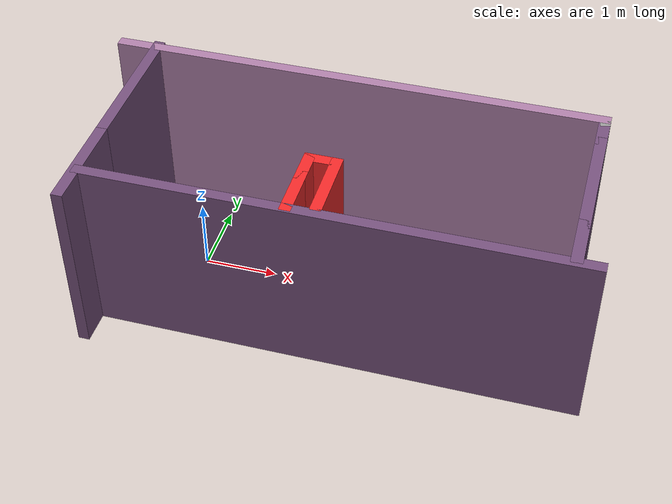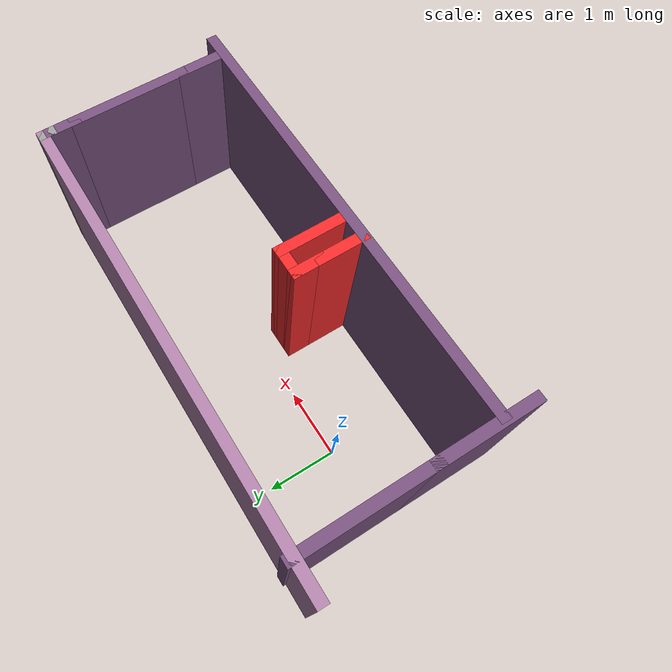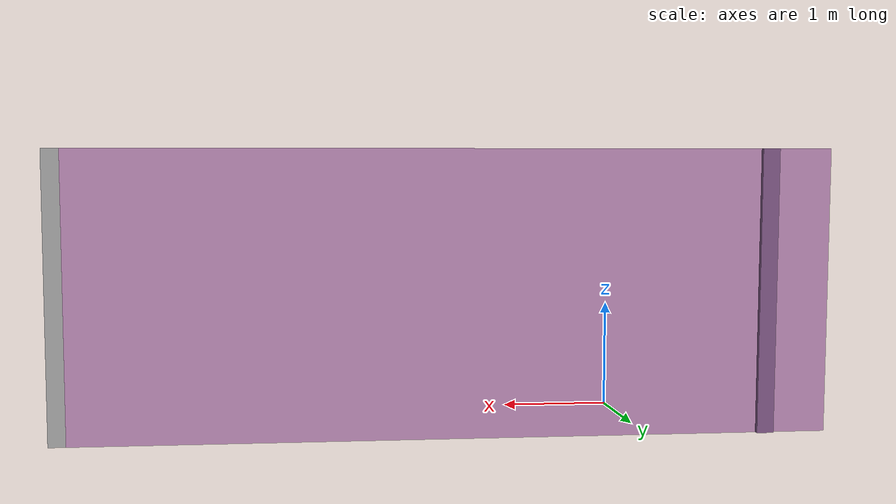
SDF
<?xml version='1.0'?>
<sdf version='1.7'>
  <model name='show'>
    <pose>1.89197 -0.154432 0 0 -0 0</pose>
    <link name='Wall_100'>
      <collision name='Wall_100_Collision'>
        <geometry>
          <box>
            <size>1 0.15 2.5</size>
          </box>
        </geometry>
        <pose>0 0 1.25 0 -0 0</pose>
      </collision>
      <visual name='Wall_100_Visual'>
        <pose>0 0 1.25 0 -0 0</pose>
        <geometry>
          <box>
            <size>1 0.15 2.5</size>
          </box>
        </geometry>
        <material>
          <script>
            <uri>file://media/materials/scripts/gazebo.material</uri>
            <name>Gazebo/Grey</name>
          </script>
          <ambient>0.937255 0.160784 0.160784 1</ambient>
        </material>
        <meta>
          <layer>0</layer>
        </meta>
      </visual>
      <pose>0.086389 -0.602431 0 0 -0 -1.5708</pose>
    </link>
    <link name='Wall_57'>
      <collision name='Wall_57_Collision'>
        <geometry>
          <box>
            <size>6.5 0.15 2.5</size>
          </box>
        </geometry>
        <pose>0 0 1.25 0 -0 0</pose>
      </collision>
      <visual name='Wall_57_Visual'>
        <pose>0 0 1.25 0 -0 0</pose>
        <geometry>
          <box>
            <size>6.5 0.15 2.5</size>
          </box>
        </geometry>
        <material>
          <script>
            <uri>file://media/materials/scripts/gazebo.material</uri>
            <name>Gazebo/Grey</name>
          </script>
          <ambient>0.458824 0.313726 0.482353 1</ambient>
        </material>
        <meta>
          <layer>0</layer>
        </meta>
      </visual>
      <pose>0.260458 -1.15345 0 0 -0 0</pose>
    </link>
    <link name='Wall_69'>
      <collision name='Wall_69_Collision'>
        <geometry>
          <box>
            <size>0.75 0.15 2.5</size>
          </box>
        </geometry>
        <pose>0 0 1.25 0 -0 0</pose>
      </collision>
      <visual name='Wall_69_Visual'>
        <pose>0 0 1.25 0 -0 0</pose>
        <geometry>
          <box>
            <size>0.75 0.15 2.5</size>
          </box>
        </geometry>
        <material>
          <script>
            <uri>file://media/materials/scripts/gazebo.material</uri>
            <name>Gazebo/Grey</name>
          </script>
          <ambient>0.458824 0.313726 0.482353 1</ambient>
        </material>
        <meta>
          <layer>0</layer>
        </meta>
      </visual>
      <pose>3.16454 -0.791716 0 0 -0 -1.5708</pose>
    </link>
    <link name='Wall_71'>
      <collision name='Wall_71_Collision'>
        <geometry>
          <box>
            <size>1.75 0.15 2.5</size>
          </box>
        </geometry>
        <pose>0 0 1.25 0 -0 0</pose>
      </collision>
      <visual name='Wall_71_Visual'>
        <pose>0 0 1.25 0 -0 0</pose>
        <geometry>
          <box>
            <size>1.75 0.15 2.5</size>
          </box>
        </geometry>
        <material>
          <script>
            <uri>file://media/materials/scripts/gazebo.material</uri>
            <name>Gazebo/Grey</name>
          </script>
          <ambient>0.458824 0.313726 0.482353 1</ambient>
        </material>
        <meta>
          <layer>0</layer>
        </meta>
      </visual>
      <pose>3.16454 0.308284 0 0 -0 1.5708</pose>
    </link>
    <link name='Wall_73'>
      <collision name='Wall_73_Collision'>
        <geometry>
          <box>
            <size>0.5 0.15 2.5</size>
          </box>
        </geometry>
        <pose>0 0 1.25 0 -0 0</pose>
      </collision>
      <visual name='Wall_73_Visual'>
        <pose>0 0 1.25 0 -0 0</pose>
        <geometry>
          <box>
            <size>0.5 0.15 2.5</size>
          </box>
        </geometry>
        <material>
          <script>
            <uri>file://media/materials/scripts/gazebo.material</uri>
            <name>Gazebo/Grey</name>
          </script>
          <ambient>0.458824 0.313726 0.482353 1</ambient>
        </material>
        <meta>
          <layer>0</layer>
        </meta>
      </visual>
      <pose>3.16454 1.28328 0 0 -0 1.5708</pose>
    </link>
    <link name='Wall_74'>
      <collision name='Wall_74_Collision'>
        <geometry>
          <box>
            <size>0.15 0.15 2.5</size>
          </box>
        </geometry>
        <pose>0 0 1.25 0 -0 0</pose>
      </collision>
      <visual name='Wall_74_Visual'>
        <pose>0 0 1.25 0 -0 0</pose>
        <geometry>
          <box>
            <size>0.15 0.15 2.5</size>
          </box>
        </geometry>
        <material>
          <script>
            <uri>file://media/materials/scripts/gazebo.material</uri>
            <name>Gazebo/Grey</name>
          </script>
          <ambient>1 1 1 1</ambient>
        </material>
        <meta>
          <layer>0</layer>
        </meta>
      </visual>
      <pose>3.16454 1.45828 0 0 -0 0</pose>
    </link>
    <link name='Wall_75'>
      <collision name='Wall_75_Collision'>
        <geometry>
          <box>
            <size>0.25 0.15 2.5</size>
          </box>
        </geometry>
        <pose>0 0 1.25 0 -0 0</pose>
      </collision>
      <visual name='Wall_75_Visual'>
        <pose>0 0 1.25 0 -0 0</pose>
        <geometry>
          <box>
            <size>0.25 0.15 2.5</size>
          </box>
        </geometry>
        <material>
          <script>
            <uri>file://media/materials/scripts/gazebo.material</uri>
            <name>Gazebo/Grey</name>
          </script>
          <ambient>1 1 1 1</ambient>
        </material>
        <meta>
          <layer>0</layer>
        </meta>
      </visual>
      <pose>3.16454 1.50828 0 0 -0 1.5708</pose>
    </link>
    <link name='Wall_76'>
      <collision name='Wall_76_Collision'>
        <geometry>
          <box>
            <size>6.75 0.15 2.5</size>
          </box>
        </geometry>
        <pose>0 0 1.25 0 -0 0</pose>
      </collision>
      <visual name='Wall_76_Visual'>
        <pose>0 0 1.25 0 -0 0</pose>
        <geometry>
          <box>
            <size>6.75 0.15 2.5</size>
          </box>
        </geometry>
        <material>
          <script>
            <uri>file://media/materials/scripts/gazebo.material</uri>
            <name>Gazebo/Grey</name>
          </script>
          <ambient>0.678431 0.498039 0.658824 1</ambient>
        </material>
        <meta>
          <layer>0</layer>
        </meta>
      </visual>
      <pose>-0.135459 1.55828 0 0 -0 3.14159</pose>
    </link>
    <link name='Wall_78'>
      <collision name='Wall_78_Collision'>
        <geometry>
          <box>
            <size>2 0.15 2.5</size>
          </box>
        </geometry>
        <pose>0 0 1.25 0 -0 0</pose>
      </collision>
      <visual name='Wall_78_Visual'>
        <pose>0 0 1.25 0 -0 0</pose>
        <geometry>
          <box>
            <size>2 0.15 2.5</size>
          </box>
        </geometry>
        <material>
          <script>
            <uri>file://media/materials/scripts/gazebo.material</uri>
            <name>Gazebo/Grey</name>
          </script>
          <ambient>0.458824 0.313726 0.482353 1</ambient>
        </material>
        <meta>
          <layer>0</layer>
        </meta>
      </visual>
      <pose>-2.95877 0.675 0 0 -0 1.5708</pose>
    </link>
    <link name='Wall_80'>
      <collision name='Wall_80_Collision'>
        <geometry>
          <box>
            <size>1.5 0.15 2.5</size>
          </box>
        </geometry>
        <pose>0 0 1.25 0 -0 0</pose>
      </collision>
      <visual name='Wall_80_Visual'>
        <pose>0 0 1.25 0 -0 0</pose>
        <geometry>
          <box>
            <size>1.5 0.15 2.5</size>
          </box>
        </geometry>
        <material>
          <script>
            <uri>file://media/materials/scripts/gazebo.material</uri>
            <name>Gazebo/Grey</name>
          </script>
          <ambient>0.458824 0.313726 0.482353 1</ambient>
        </material>
        <meta>
          <layer>0</layer>
        </meta>
      </visual>
      <pose>-2.95877 -0.925 0 0 -0 -1.5708</pose>
    </link>
    <link name='Wall_97'>
      <collision name='Wall_97_Collision'>
        <geometry>
          <box>
            <size>0.75 0.15 2.5</size>
          </box>
        </geometry>
        <pose>0 0 1.25 0 -0 0</pose>
      </collision>
      <visual name='Wall_97_Visual'>
        <pose>0 0 1.25 0 -0 0</pose>
        <geometry>
          <box>
            <size>0.75 0.15 2.5</size>
          </box>
        </geometry>
        <material>
          <script>
            <uri>file://media/materials/scripts/gazebo.material</uri>
            <name>Gazebo/Grey</name>
          </script>
          <ambient>0.937255 0.160784 0.160784 1</ambient>
        </material>
        <meta>
          <layer>0</layer>
        </meta>
      </visual>
      <pose>-0.26361 -0.827431 0 0 -0 1.5708</pose>
    </link>
    <link name='Wall_98'>
      <collision name='Wall_98_Collision'>
        <geometry>
          <box>
            <size>0.5 0.15 2.5</size>
          </box>
        </geometry>
        <pose>0 0 1.25 0 -0 0</pose>
      </collision>
      <visual name='Wall_98_Visual'>
        <pose>0 0 1.25 0 -0 0</pose>
        <geometry>
          <box>
            <size>0.5 0.15 2.5</size>
          </box>
        </geometry>
        <material>
          <script>
            <uri>file://media/materials/scripts/gazebo.material</uri>
            <name>Gazebo/Grey</name>
          </script>
          <ambient>0.937255 0.160784 0.160784 1</ambient>
        </material>
        <meta>
          <layer>0</layer>
        </meta>
      </visual>
      <pose>-0.26361 -0.352431 0 0 -0 1.5708</pose>
    </link>
    <link name='Wall_99'>
      <collision name='Wall_99_Collision'>
        <geometry>
          <box>
            <size>0.5 0.15 2.5</size>
          </box>
        </geometry>
        <pose>0 0 1.25 0 -0 0</pose>
      </collision>
      <visual name='Wall_99_Visual'>
        <pose>0 0 1.25 0 -0 0</pose>
        <geometry>
          <box>
            <size>0.5 0.15 2.5</size>
          </box>
        </geometry>
        <material>
          <script>
            <uri>file://media/materials/scripts/gazebo.material</uri>
            <name>Gazebo/Grey</name>
          </script>
          <ambient>0.937255 0.160784 0.160784 1</ambient>
        </material>
        <meta>
          <layer>0</layer>
        </meta>
      </visual>
      <pose>-0.08861 -0.177431 0 0 -0 0</pose>
    </link>
    <static>1</static>
  </model>
</sdf>
